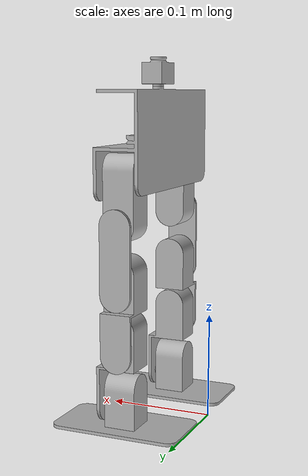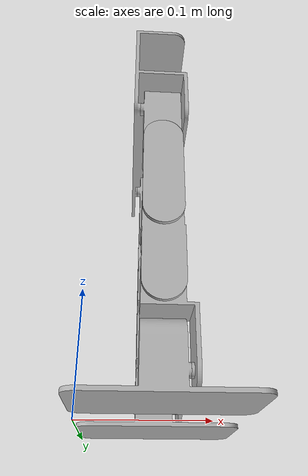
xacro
<?xml version="1.0" ?>
<robot name="robot_urd" xmlns:xacro="http://www.ros.org/wiki/xacro">

<xacro:include filename="$(find robot_urd_description)/urdf/materials.xacro" />
<xacro:include filename="$(find robot_urd_description)/urdf/robot_urd.trans" />
<xacro:include filename="$(find robot_urd_description)/urdf/robot_urd.gazebo" />
<link name="base_link">
  <inertial>
    <origin xyz="0.06302135621902447 -0.001654303303745368 0.26447733595472356" rpy="0 0 0"/>
    <mass value="0.8825876155637866"/>
    <inertia ixx="0.002729" iyy="0.001002" izz="0.002223" ixy="-3e-06" iyz="-4.5e-05" ixz="9.3e-05"/>
  </inertial>
  <visual>
    <origin xyz="0 0 0" rpy="0 0 0"/>
    <geometry>
      <mesh filename="package://robot_urd_description/meshes/base_link.stl" scale="0.001 0.001 0.001"/>
    </geometry>
    <material name="silver"/>
  </visual>
  <collision>
    <origin xyz="0 0 0" rpy="0 0 0"/>
    <geometry>
      <mesh filename="package://robot_urd_description/meshes/base_link.stl" scale="0.001 0.001 0.001"/>
    </geometry>
  </collision>
</link>

<link name="lidar_1">
  <inertial>
    <origin xyz="-1.3506771797955341e-06 -5.748661631606658e-05 0.0015504335164893135" rpy="0 0 0"/>
    <mass value="0.003984887751598981"/>
    <inertia ixx="0.0" iyy="0.0" izz="0.0" ixy="0.0" iyz="-0.0" ixz="-0.0"/>
  </inertial>
  <visual>
    <origin xyz="-0.061274 0.004181 -0.336022" rpy="0 0 0"/>
    <geometry>
      <mesh filename="package://robot_urd_description/meshes/lidar_1.stl" scale="0.001 0.001 0.001"/>
    </geometry>
    <material name="silver"/>
  </visual>
  <collision>
    <origin xyz="-0.061274 0.004181 -0.336022" rpy="0 0 0"/>
    <geometry>
      <mesh filename="package://robot_urd_description/meshes/lidar_1.stl" scale="0.001 0.001 0.001"/>
    </geometry>
  </collision>
</link>

<link name="head_1">
  <inertial>
    <origin xyz="-1.59672157926255e-05 -0.0004380575565104748 0.01197783415502518" rpy="0 0 0"/>
    <mass value="0.09646075336203239"/>
    <inertia ixx="1e-05" iyy="7e-06" izz="1e-05" ixy="-0.0" iyz="-0.0" ixz="0.0"/>
  </inertial>
  <visual>
    <origin xyz="-0.0616 0.003419 -0.312367" rpy="0 0 0"/>
    <geometry>
      <mesh filename="package://robot_urd_description/meshes/head_1.stl" scale="0.001 0.001 0.001"/>
    </geometry>
    <material name="silver"/>
  </visual>
  <collision>
    <origin xyz="-0.0616 0.003419 -0.312367" rpy="0 0 0"/>
    <geometry>
      <mesh filename="package://robot_urd_description/meshes/head_1.stl" scale="0.001 0.001 0.001"/>
    </geometry>
  </collision>
</link>

<link name="imu_1">
  <inertial>
    <origin xyz="0.0008064627033654431 -9.300821719877166e-05 0.0025287835840761552" rpy="0 0 0"/>
    <mass value="0.04827749999999997"/>
    <inertia ixx="1e-05" iyy="3e-06" izz="1.2e-05" ixy="0.0" iyz="-0.0" ixz="-0.0"/>
  </inertial>
  <visual>
    <origin xyz="-0.069374 0.001578 -0.262406" rpy="0 0 0"/>
    <geometry>
      <mesh filename="package://robot_urd_description/meshes/imu_1.stl" scale="0.001 0.001 0.001"/>
    </geometry>
    <material name="silver"/>
  </visual>
  <collision>
    <origin xyz="-0.069374 0.001578 -0.262406" rpy="0 0 0"/>
    <geometry>
      <mesh filename="package://robot_urd_description/meshes/imu_1.stl" scale="0.001 0.001 0.001"/>
    </geometry>
  </collision>
</link>

<link name="left_pelvis_1">
  <inertial>
    <origin xyz="0.01795751005501258 0.00014168014442148685 -0.024981592738119313" rpy="0 0 0"/>
    <mass value="0.5234143660816903"/>
    <inertia ixx="0.00028" iyy="0.00028" izz="7.6e-05" ixy="-0.0" iyz="1e-06" ixz="1e-06"/>
  </inertial>
  <visual>
    <origin xyz="-0.050144 -0.059262 -0.240709" rpy="0 0 0"/>
    <geometry>
      <mesh filename="package://robot_urd_description/meshes/left_pelvis_1.stl" scale="0.001 0.001 0.001"/>
    </geometry>
    <material name="silver"/>
  </visual>
  <collision>
    <origin xyz="-0.050144 -0.059262 -0.240709" rpy="0 0 0"/>
    <geometry>
      <mesh filename="package://robot_urd_description/meshes/left_pelvis_1.stl" scale="0.001 0.001 0.001"/>
    </geometry>
  </collision>
</link>

<link name="right_pelvis_1">
  <inertial>
    <origin xyz="0.01795699759739125 0.00011312298216949179 -0.024981817255673278" rpy="0 0 0"/>
    <mass value="0.5234143660816912"/>
    <inertia ixx="0.00028" iyy="0.00028" izz="7.6e-05" ixy="-0.0" iyz="1e-06" ixz="1e-06"/>
  </inertial>
  <visual>
    <origin xyz="-0.050147 0.060657 -0.236291" rpy="0 0 0"/>
    <geometry>
      <mesh filename="package://robot_urd_description/meshes/right_pelvis_1.stl" scale="0.001 0.001 0.001"/>
    </geometry>
    <material name="silver"/>
  </visual>
  <collision>
    <origin xyz="-0.050147 0.060657 -0.236291" rpy="0 0 0"/>
    <geometry>
      <mesh filename="package://robot_urd_description/meshes/right_pelvis_1.stl" scale="0.001 0.001 0.001"/>
    </geometry>
  </collision>
</link>

<link name="right_tight_1">
  <inertial>
    <origin xyz="1.3131126348805977e-05 -0.0031878102092162824 -0.0315229550344438" rpy="0 0 0"/>
    <mass value="0.06375845443348595"/>
    <inertia ixx="4.1e-05" iyy="4.6e-05" izz="4e-06" ixy="-0.0" iyz="0.0" ixz="0.0"/>
  </inertial>
  <visual>
    <origin xyz="-0.068177 0.078327 -0.18818" rpy="0 0 0"/>
    <geometry>
      <mesh filename="package://robot_urd_description/meshes/right_tight_1.stl" scale="0.001 0.001 0.001"/>
    </geometry>
    <material name="silver"/>
  </visual>
  <collision>
    <origin xyz="-0.068177 0.078327 -0.18818" rpy="0 0 0"/>
    <geometry>
      <mesh filename="package://robot_urd_description/meshes/right_tight_1.stl" scale="0.001 0.001 0.001"/>
    </geometry>
  </collision>
</link>

<link name="right_knee_1">
  <inertial>
    <origin xyz="-7.702639705647885e-07 0.01571586630320984 0.000655329465449217" rpy="0 0 0"/>
    <mass value="0.386658515888616"/>
    <inertia ixx="0.000204" iyy="0.000189" izz="6.9e-05" ixy="0.0" iyz="-3.6e-05" ixz="0.0"/>
  </inertial>
  <visual>
    <origin xyz="-0.068216 0.077896 -0.125181" rpy="0 0 0"/>
    <geometry>
      <mesh filename="package://robot_urd_description/meshes/right_knee_1.stl" scale="0.001 0.001 0.001"/>
    </geometry>
    <material name="silver"/>
  </visual>
  <collision>
    <origin xyz="-0.068216 0.077896 -0.125181" rpy="0 0 0"/>
    <geometry>
      <mesh filename="package://robot_urd_description/meshes/right_knee_1.stl" scale="0.001 0.001 0.001"/>
    </geometry>
  </collision>
</link>

<link name="right_ankle_1">
  <inertial>
    <origin xyz="0.0021982763757750212 0.01788953828995568 0.0046541659224381" rpy="0 0 0"/>
    <mass value="0.38668550638021726"/>
    <inertia ixx="0.00019" iyy="0.000202" izz="7e-05" ixy="-0.0" iyz="1e-06" ixz="3.6e-05"/>
  </inertial>
  <visual>
    <origin xyz="-0.068251 0.077505 -0.068183" rpy="0 0 0"/>
    <geometry>
      <mesh filename="package://robot_urd_description/meshes/right_ankle_1.stl" scale="0.001 0.001 0.001"/>
    </geometry>
    <material name="silver"/>
  </visual>
  <collision>
    <origin xyz="-0.068251 0.077505 -0.068183" rpy="0 0 0"/>
    <geometry>
      <mesh filename="package://robot_urd_description/meshes/right_ankle_1.stl" scale="0.001 0.001 0.001"/>
    </geometry>
  </collision>
</link>

<link name="right_foot_1">
  <inertial>
    <origin xyz="-0.017024280857820984 0.0011175257093816726 -0.002681142128240008" rpy="0 0 0"/>
    <mass value="0.5246231337400495"/>
    <inertia ixx="0.000231" iyy="0.00041" izz="0.000365" ixy="-1e-06" iyz="9e-06" ixz="7e-06"/>
  </inertial>
  <visual>
    <origin xyz="-0.086284 0.059142 -0.015318" rpy="0 0 0"/>
    <geometry>
      <mesh filename="package://robot_urd_description/meshes/right_foot_1.stl" scale="0.001 0.001 0.001"/>
    </geometry>
    <material name="silver"/>
  </visual>
  <collision>
    <origin xyz="-0.086284 0.059142 -0.015318" rpy="0 0 0"/>
    <geometry>
      <mesh filename="package://robot_urd_description/meshes/right_foot_1.stl" scale="0.001 0.001 0.001"/>
    </geometry>
  </collision>
</link>

<link name="left_tight_1">
  <inertial>
    <origin xyz="-0.002151588340230909 0.003508611690805394 -0.031415461868238376" rpy="0 0 0"/>
    <mass value="0.0637584544337173"/>
    <inertia ixx="4.1e-05" iyy="4.6e-05" izz="5e-06" ixy="0.0" iyz="0.0" ixz="-2e-06"/>
  </inertial>
  <visual>
    <origin xyz="-0.068174 -0.077422 -0.192781" rpy="0 0 0"/>
    <geometry>
      <mesh filename="package://robot_urd_description/meshes/left_tight_1.stl" scale="0.001 0.001 0.001"/>
    </geometry>
    <material name="silver"/>
  </visual>
  <collision>
    <origin xyz="-0.068174 -0.077422 -0.192781" rpy="0 0 0"/>
    <geometry>
      <mesh filename="package://robot_urd_description/meshes/left_tight_1.stl" scale="0.001 0.001 0.001"/>
    </geometry>
  </collision>
</link>

<link name="left_knee_1">
  <inertial>
    <origin xyz="3.6978467971585105e-05 -0.01572099317087619 0.0004937283037185491" rpy="0 0 0"/>
    <mass value="0.386658515888616"/>
    <inertia ixx="0.000203" iyy="0.000188" izz="7e-05" ixy="3e-06" iyz="3.7e-05" ixz="-9e-06"/>
  </inertial>
  <visual>
    <origin xyz="-0.063883 -0.077632 -0.129927" rpy="0 0 0"/>
    <geometry>
      <mesh filename="package://robot_urd_description/meshes/left_knee_1.stl" scale="0.001 0.001 0.001"/>
    </geometry>
    <material name="silver"/>
  </visual>
  <collision>
    <origin xyz="-0.063883 -0.077632 -0.129927" rpy="0 0 0"/>
    <geometry>
      <mesh filename="package://robot_urd_description/meshes/left_knee_1.stl" scale="0.001 0.001 0.001"/>
    </geometry>
  </collision>
</link>

<link name="left_ankle_1">
  <inertial>
    <origin xyz="0.0022012220104688923 -0.017936491479911477 0.004470456835236988" rpy="0 0 0"/>
    <mass value="0.38668550972567756"/>
    <inertia ixx="0.00019" iyy="0.000202" izz="7e-05" ixy="-0.0" iyz="1e-06" ixz="3.6e-05"/>
  </inertial>
  <visual>
    <origin xyz="-0.06 -0.077823 -0.07306" rpy="0 0 0"/>
    <geometry>
      <mesh filename="package://robot_urd_description/meshes/left_ankle_1.stl" scale="0.001 0.001 0.001"/>
    </geometry>
    <material name="silver"/>
  </visual>
  <collision>
    <origin xyz="-0.06 -0.077823 -0.07306" rpy="0 0 0"/>
    <geometry>
      <mesh filename="package://robot_urd_description/meshes/left_ankle_1.stl" scale="0.001 0.001 0.001"/>
    </geometry>
  </collision>
</link>

<link name="left_foot_1">
  <inertial>
    <origin xyz="-0.017025617718688837 -0.00109945180645684 -0.0026785348014080473" rpy="0 0 0"/>
    <mass value="0.5246231337400495"/>
    <inertia ixx="0.000231" iyy="0.00041" izz="0.000365" ixy="1e-06" iyz="-9e-06" ixz="8e-06"/>
  </inertial>
  <visual>
    <origin xyz="-0.078 -0.06 -0.02" rpy="0 0 0"/>
    <geometry>
      <mesh filename="package://robot_urd_description/meshes/left_foot_1.stl" scale="0.001 0.001 0.001"/>
    </geometry>
    <material name="silver"/>
  </visual>
  <collision>
    <origin xyz="-0.078 -0.06 -0.02" rpy="0 0 0"/>
    <geometry>
      <mesh filename="package://robot_urd_description/meshes/left_foot_1.stl" scale="0.001 0.001 0.001"/>
    </geometry>
  </collision>
</link>

<joint name="Rigid 1" type="fixed">
  <origin xyz="-0.000326 -0.000762 0.023655" rpy="0 0 0"/>
  <parent link="head_1"/>
  <child link="lidar_1"/>
</joint>

<joint name="Revolute 2" type="continuous">
  <origin xyz="0.0616 -0.003419 0.312367" rpy="0 0 0"/>
  <parent link="base_link"/>
  <child link="head_1"/>
  <axis xyz="-0.000619 -0.036817 0.999322"/>
</joint>

<joint name="Rigid 3" type="fixed">
  <origin xyz="0.069374 -0.001578 0.262406" rpy="0 0 0"/>
  <parent link="base_link"/>
  <child link="imu_1"/>
</joint>

<joint name="Revolute 4" type="continuous">
  <origin xyz="0.050144 0.059262 0.240709" rpy="0 0 0"/>
  <parent link="base_link"/>
  <child link="left_pelvis_1"/>
  <axis xyz="1.0 -2e-06 0.000619"/>
</joint>

<joint name="Revolute 5" type="continuous">
  <origin xyz="0.050147 -0.060657 0.236291" rpy="0 0 0"/>
  <parent link="base_link"/>
  <child link="right_pelvis_1"/>
  <axis xyz="1.0 -2e-06 0.000619"/>
</joint>

<joint name="Revolute 6" type="continuous">
  <origin xyz="0.01803 -0.01767 -0.048111" rpy="0 0 0"/>
  <parent link="right_pelvis_1"/>
  <child link="right_tight_1"/>
  <axis xyz="2e-06 -0.999977 -0.006853"/>
</joint>

<joint name="Revolute 7" type="continuous">
  <origin xyz="3.9e-05 0.000431 -0.062999" rpy="0 0 0"/>
  <parent link="right_tight_1"/>
  <child link="right_knee_1"/>
  <axis xyz="-2e-06 0.999977 0.006853"/>
</joint>

<joint name="Revolute 8" type="continuous">
  <origin xyz="3.5e-05 0.000391 -0.056998" rpy="0 0 0"/>
  <parent link="right_knee_1"/>
  <child link="right_ankle_1"/>
  <axis xyz="-2e-06 0.999977 0.006853"/>
</joint>

<joint name="Revolute 9" type="continuous">
  <origin xyz="0.018033 0.018363 -0.052865" rpy="0 0 0"/>
  <parent link="right_ankle_1"/>
  <child link="right_foot_1"/>
  <axis xyz="-1.0 2e-06 -0.000619"/>
</joint>

<joint name="Revolute 10" type="continuous">
  <origin xyz="0.01803 0.01816 -0.047928" rpy="0 0 0"/>
  <parent link="left_pelvis_1"/>
  <child link="left_tight_1"/>
  <axis xyz="0.0 0.999994 0.003345"/>
</joint>

<joint name="Revolute 11" type="continuous">
  <origin xyz="-0.004291 0.00021 -0.062854" rpy="0 0 0"/>
  <parent link="left_tight_1"/>
  <child link="left_knee_1"/>
  <axis xyz="-0.0 -0.999994 -0.003345"/>
</joint>

<joint name="Revolute 12" type="continuous">
  <origin xyz="-0.003883 0.000191 -0.056867" rpy="0 0 0"/>
  <parent link="left_knee_1"/>
  <child link="left_ankle_1"/>
  <axis xyz="0.0 -0.999994 -0.003345"/>
</joint>

<joint name="Revolute 13" type="continuous">
  <origin xyz="0.018 -0.017823 -0.05306" rpy="0 0 0"/>
  <parent link="left_ankle_1"/>
  <child link="left_foot_1"/>
  <axis xyz="-1.0 -0.0 0.0"/>
</joint>

</robot>

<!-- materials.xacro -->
<robot name="robot_urd" xmlns:xacro="http://www.ros.org/wiki/xacro" >

<material name="silver">
  <color rgba="0.700 0.700 0.700 1.000"/>
</material>

</robot>

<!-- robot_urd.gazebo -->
<robot name="robot_urd" xmlns:xacro="http://www.ros.org/wiki/xacro" >

<xacro:property name="body_color" value="Gazebo/Silver" />

<gazebo>
  <plugin name="control" filename="libgazebo_ros_control.so"/>
</gazebo>
<gazebo reference="base_link">
  <material>${body_color}</material>
  <mu1>0.2</mu1>
  <mu2>0.2</mu2>
  <selfCollide>true</selfCollide>
  <gravity>true</gravity>
</gazebo>

<gazebo reference="lidar_1">
  <material>${body_color}</material>
  <mu1>0.2</mu1>
  <mu2>0.2</mu2>
  <selfCollide>true</selfCollide>
</gazebo>

<gazebo reference="head_1">
  <material>${body_color}</material>
  <mu1>0.2</mu1>
  <mu2>0.2</mu2>
  <selfCollide>true</selfCollide>
</gazebo>

<gazebo reference="imu_1">
  <material>${body_color}</material>
  <mu1>0.2</mu1>
  <mu2>0.2</mu2>
  <selfCollide>true</selfCollide>
</gazebo>

<gazebo reference="left_pelvis_1">
  <material>${body_color}</material>
  <mu1>0.2</mu1>
  <mu2>0.2</mu2>
  <selfCollide>true</selfCollide>
</gazebo>

<gazebo reference="right_pelvis_1">
  <material>${body_color}</material>
  <mu1>0.2</mu1>
  <mu2>0.2</mu2>
  <selfCollide>true</selfCollide>
</gazebo>

<gazebo reference="right_tight_1">
  <material>${body_color}</material>
  <mu1>0.2</mu1>
  <mu2>0.2</mu2>
  <selfCollide>true</selfCollide>
</gazebo>

<gazebo reference="right_knee_1">
  <material>${body_color}</material>
  <mu1>0.2</mu1>
  <mu2>0.2</mu2>
  <selfCollide>true</selfCollide>
</gazebo>

<gazebo reference="right_ankle_1">
  <material>${body_color}</material>
  <mu1>0.2</mu1>
  <mu2>0.2</mu2>
  <selfCollide>true</selfCollide>
</gazebo>

<gazebo reference="right_foot_1">
  <material>${body_color}</material>
  <mu1>0.2</mu1>
  <mu2>0.2</mu2>
  <selfCollide>true</selfCollide>
</gazebo>

<gazebo reference="left_tight_1">
  <material>${body_color}</material>
  <mu1>0.2</mu1>
  <mu2>0.2</mu2>
  <selfCollide>true</selfCollide>
</gazebo>

<gazebo reference="left_knee_1">
  <material>${body_color}</material>
  <mu1>0.2</mu1>
  <mu2>0.2</mu2>
  <selfCollide>true</selfCollide>
</gazebo>

<gazebo reference="left_ankle_1">
  <material>${body_color}</material>
  <mu1>0.2</mu1>
  <mu2>0.2</mu2>
  <selfCollide>true</selfCollide>
</gazebo>

<gazebo reference="left_foot_1">
  <material>${body_color}</material>
  <mu1>0.2</mu1>
  <mu2>0.2</mu2>
  <selfCollide>true</selfCollide>
</gazebo>

</robot>
